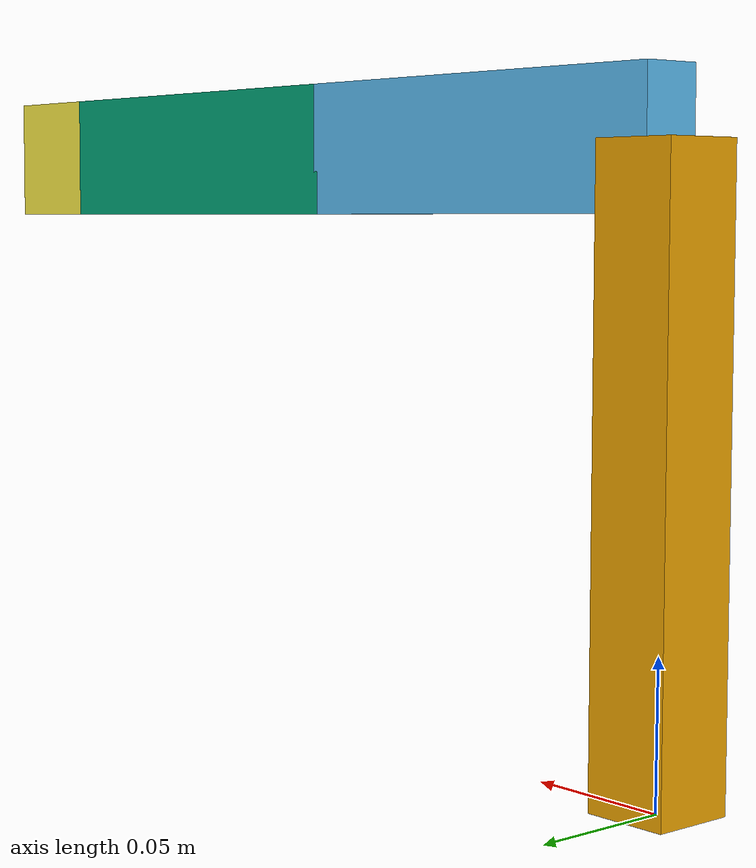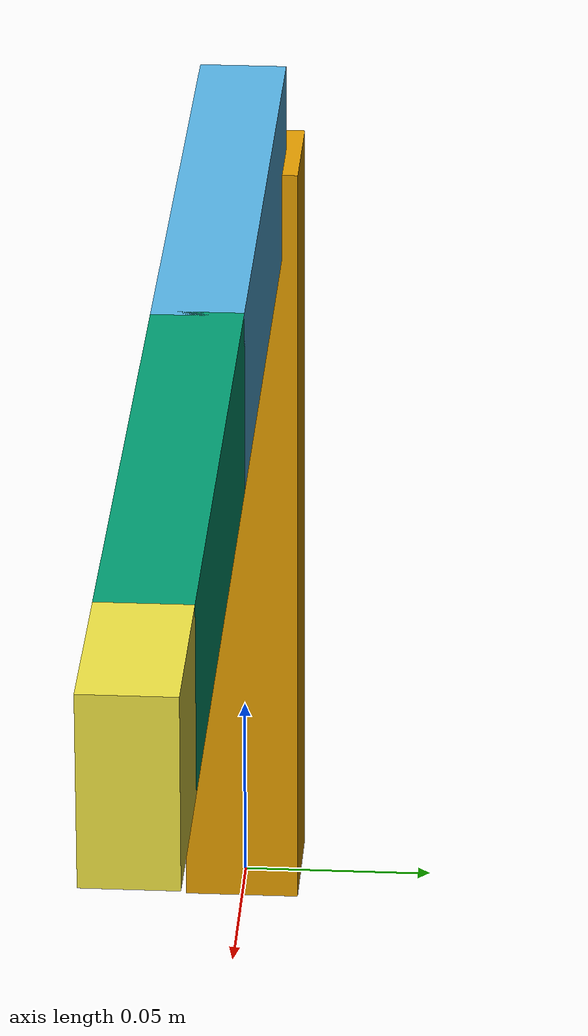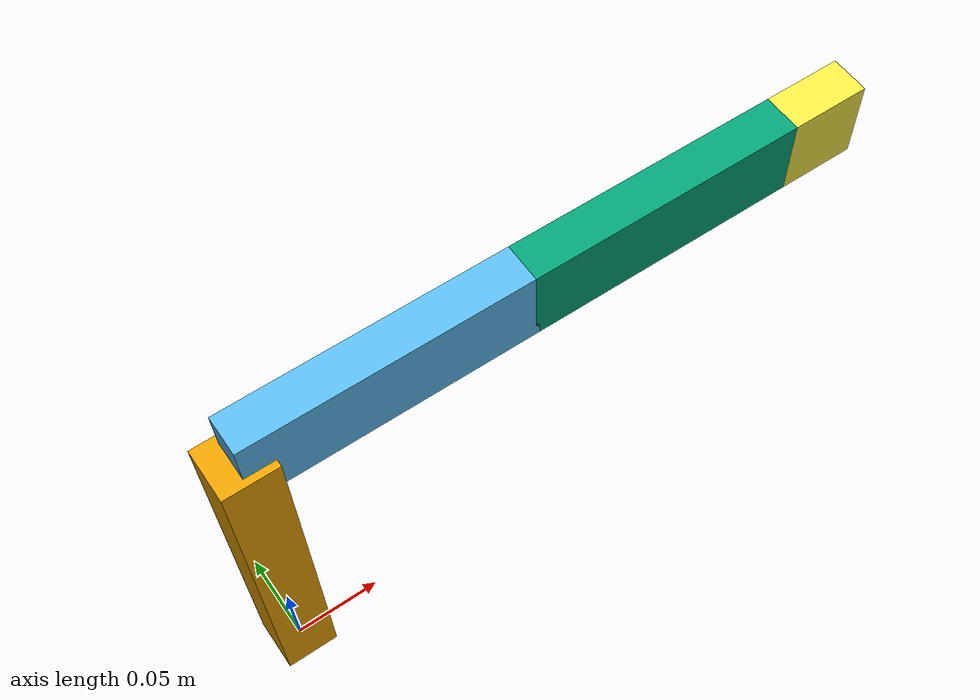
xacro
<?xml version="1.0"?>
<robot xmlns:xacro="http://www.ros.org/wiki/xacro" name="planar_arm">
    <xacro:arg name="initial_positions_file" default="initial_positions.yaml" />

    <!-- Import planar_arm urdf file -->
    <xacro:include filename="$(find my_robot_description)/urdf/robot.urdf.xacro" />

    <!-- Import control_xacro -->
    <xacro:include filename="planar_arm.ros2_control.xacro" />

    <xacro:planar_arm_ros2_control name="FakeSystem" initial_positions_file="$(arg initial_positions_file)"/>

</robot>

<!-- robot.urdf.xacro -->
<robot name="planar_arm" xmlns:xacro="http://www.ros.org/wiki/xacro">

  <!-- BASE -->

  <link name="base_link">

    <visual>
      <geometry>
        <box size="0.03 0.03 0.21"/>
      </geometry>

      <!-- center base -->
      <origin xyz="0 0 0.105"/>
    </visual>

    <collision>
      <geometry>
        <box size="0.03 0.03 0.21"/>
      </geometry>

      <origin xyz="0 0 0.105"/>
    </collision>

  </link>

  <!-- LINK 1 -->

  <link name="link1">

    <visual>
      <geometry>
        <box size="0.157 0.022 0.046"/>
      </geometry>

      <!-- center of link -->
      <origin xyz="0.0765 0 0"/>
    </visual>

    <collision>
      <geometry>
        <box size="0.157 0.022 0.046"/>
      </geometry>

      <origin xyz="0.0765 0 0"/>
    </collision>

  </link>

  <!-- JOINT 1 -->

  <joint name="joint1" type="revolute">

    <parent link="base_link"/>
    <child link="link1"/>

    <!-- top of base -->
    <origin xyz="0 0 0.21"/>

    <axis xyz="0 0 1"/>

    <limit
      lower="-2.6"
      upper="2.6"
      effort="1.0"
      velocity="1.0"/>

  </joint>

  <!-- LINK 2 -->

  <link name="link2">

    <visual>
      <geometry>
        <box size="0.153 0.022 0.046"/>
      </geometry>

      <!-- center of link -->
      <origin xyz="0.0765 0 0"/>
    </visual>

    <collision>
      <geometry>
        <box size="0.153 0.022 0.046"/>
      </geometry>

      <origin xyz="0.0765 0 0"/>
    </collision>

  </link>

  <!-- JOINT 2 -->

  <joint name="joint2" type="revolute">

    <parent link="link1"/>
    <child link="link2"/>

    <!-- end of link1 -->
    <origin xyz="0.153 0 0"/>

    <axis xyz="0 0 1"/>

    <limit
      lower="-2.6"
      upper="2.6"
      effort="1.0"
      velocity="1.0"/>

  </joint>

  <!-- TOOL -->

  <link name="tool_link">

    <visual>
      <geometry>
        <box size="0.043 0.022 0.046"/>
      </geometry>

      <!-- center of tool -->
      <origin xyz="0.0215 0 0"/>
    </visual>

    <collision>
      <geometry>
        <box size="0.043 0.022 0.046"/>
      </geometry>

      <origin xyz="0.0215 0 0"/>
    </collision>

  </link>

  <!-- JOINT 3 -->

  <joint name="joint3" type="revolute">

    <parent link="link2"/>
    <child link="tool_link"/>

    <!-- end of link2 -->
    <origin xyz="0.153 0 0"/>

    <axis xyz="0 0 1"/>

    <limit
      lower="-2.6"
      upper="2.6"
      effort="1.0"
      velocity="1.0"/>

  </joint>

</robot>
